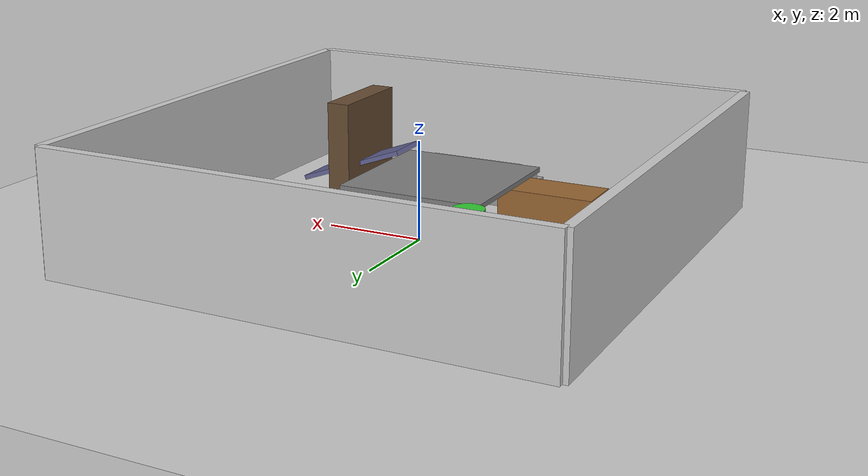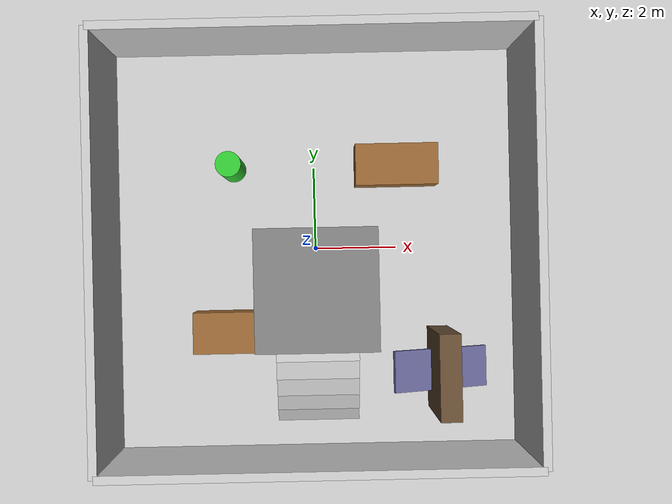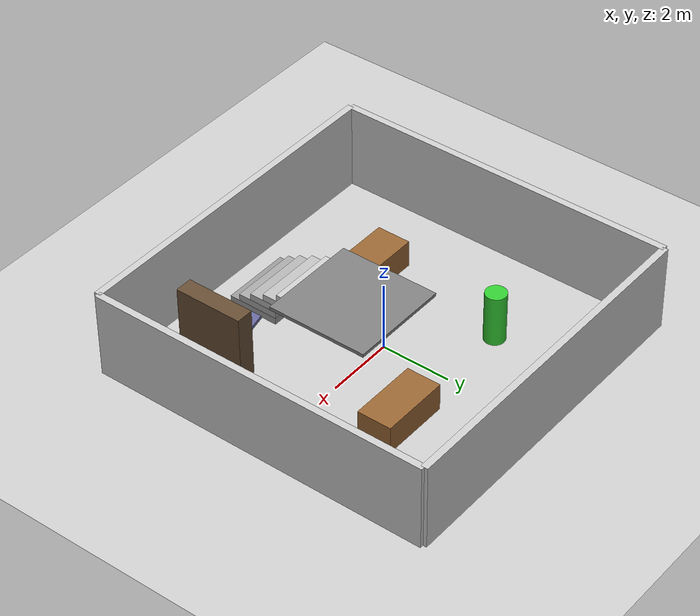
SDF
<?xml version="1.0" ?>
<sdf version="1.6">
  <world name="office_world">

    <!-- Physics -->
    <physics type="ode">
      <real_time_update_rate>1000.0</real_time_update_rate>
      <max_step_size>0.001</max_step_size>
      <real_time_factor>1</real_time_factor>
    </physics>

    <!-- Lighting -->
    <include>
      <uri>model://sun</uri>
    </include>

    <!-- Ground Plane -->
    <include>
      <uri>model://ground_plane</uri>
    </include>

    <!-- Walls to create office layout -->

    <!-- North Wall -->
    <model name="north_wall">
      <static>true</static>
      <link name="link">
        <collision name="collision">
          <geometry>
            <box>
              <size>10 0.2 2.5</size>
            </box>
          </geometry>
        </collision>
        <visual name="visual">
          <geometry>
            <box>
              <size>10 0.2 2.5</size>
            </box>
          </geometry>
          <material>
            <ambient>0.8 0.8 0.8 1</ambient>
          </material>
        </visual>
      </link>
      <pose>0 5 1.25 0 0 0</pose>
    </model>

    <!-- South Wall -->
    <model name="south_wall">
      <static>true</static>
      <link name="link">
        <collision name="collision">
          <geometry>
            <box>
              <size>10 0.2 2.5</size>
            </box>
          </geometry>
        </collision>
        <visual name="visual">
          <geometry>
            <box>
              <size>10 0.2 2.5</size>
            </box>
          </geometry>
          <material>
            <ambient>0.8 0.8 0.8 1</ambient>
          </material>
        </visual>
      </link>
      <pose>0 -5 1.25 0 0 0</pose>
    </model>

    <!-- East Wall -->
    <model name="east_wall">
      <static>true</static>
      <link name="link">
        <collision name="collision">
          <geometry>
            <box>
              <size>0.2 10 2.5</size>
            </box>
          </geometry>
        </collision>
        <visual name="visual">
          <geometry>
            <box>
              <size>0.2 10 2.5</size>
            </box>
          </geometry>
          <material>
            <ambient>0.8 0.8 0.8 1</ambient>
          </material>
        </visual>
      </link>
      <pose>5 0 1.25 0 0 0</pose>
    </model>

    <!-- West Wall -->
    <model name="west_wall">
      <static>true</static>
      <link name="link">
        <collision name="collision">
          <geometry>
            <box>
              <size>0.2 10 2.5</size>
            </box>
          </geometry>
        </collision>
        <visual name="visual">
          <geometry>
            <box>
              <size>0.2 10 2.5</size>
            </box>
          </geometry>
          <material>
            <ambient>0.8 0.8 0.8 1</ambient>
          </material>
        </visual>
      </link>
      <pose>-5 0 1.25 0 0 0</pose>
    </model>

    <!-- Internal obstacles/furniture -->

    <!-- Table 1 -->
    <model name="table_1">
      <static>true</static>
      <link name="link">
        <collision name="collision">
          <geometry>
            <box>
              <size>2 1 0.8</size>
            </box>
          </geometry>
        </collision>
        <visual name="visual">
          <geometry>
            <box>
              <size>2 1 0.8</size>
            </box>
          </geometry>
          <material>
            <ambient>0.6 0.4 0.2 1</ambient>
          </material>
        </visual>
      </link>
      <pose>2 2 0.4 0 0 0</pose>
    </model>

    <!-- Table 2 -->
    <model name="table_2">
      <static>true</static>
      <link name="link">
        <collision name="collision">
          <geometry>
            <box>
              <size>2 1 0.8</size>
            </box>
          </geometry>
        </collision>
        <visual name="visual">
          <geometry>
            <box>
              <size>2 1 0.8</size>
            </box>
          </geometry>
          <material>
            <ambient>0.6 0.4 0.2 1</ambient>
          </material>
        </visual>
      </link>
      <pose>-2 -2 0.4 0 0 0</pose>
    </model>

    <!-- Bookshelf -->
    <model name="bookshelf">
      <static>true</static>
      <link name="link">
        <collision name="collision">
          <geometry>
            <box>
              <size>0.5 2 2</size>
            </box>
          </geometry>
        </collision>
        <visual name="visual">
          <geometry>
            <box>
              <size>0.5 2 2</size>
            </box>
          </geometry>
          <material>
            <ambient>0.4 0.3 0.2 1</ambient>
          </material>
        </visual>
      </link>
      <pose>3 -3 1 0 0 0</pose>
    </model>

    <!-- Cylinder obstacle -->
    <model name="cylinder_obstacle">
      <static>true</static>
      <link name="link">
        <collision name="collision">
          <geometry>
            <cylinder>
              <radius>0.3</radius>
              <length>1.5</length>
            </cylinder>
          </geometry>
        </collision>
        <visual name="visual">
          <geometry>
            <cylinder>
              <radius>0.3</radius>
              <length>1.5</length>
            </cylinder>
          </geometry>
          <material>
            <ambient>0.2 0.8 0.2 1</ambient>
          </material>
        </visual>
      </link>
      <pose>-2 2 0.75 0 0 0</pose>
    </model>

    <!-- Staircase -->
    <!-- Step 1 (bottom) -->
    <model name="stair_step_1">
      <static>true</static>
      <link name="link">
        <collision name="collision">
          <geometry>
            <box>
              <size>2.0 1.5 0.2</size>
            </box>
          </geometry>
        </collision>
        <visual name="visual">
          <geometry>
            <box>
              <size>2.0 1.5 0.2</size>
            </box>
          </geometry>
          <material>
            <ambient>0.6 0.6 0.6 1</ambient>
          </material>
        </visual>
      </link>
      <pose>0 -3.5 0.1 0 0 0</pose>
    </model>

    <!-- Step 2 -->
    <model name="stair_step_2">
      <static>true</static>
      <link name="link">
        <collision name="collision">
          <geometry>
            <box>
              <size>2.0 1.2 0.2</size>
            </box>
          </geometry>
        </collision>
        <visual name="visual">
          <geometry>
            <box>
              <size>2.0 1.2 0.2</size>
            </box>
          </geometry>
          <material>
            <ambient>0.65 0.65 0.65 1</ambient>
          </material>
        </visual>
      </link>
      <pose>0 -3.35 0.3 0 0 0</pose>
    </model>

    <!-- Step 3 -->
    <model name="stair_step_3">
      <static>true</static>
      <link name="link">
        <collision name="collision">
          <geometry>
            <box>
              <size>2.0 0.9 0.2</size>
            </box>
          </geometry>
        </collision>
        <visual name="visual">
          <geometry>
            <box>
              <size>2.0 0.9 0.2</size>
            </box>
          </geometry>
          <material>
            <ambient>0.7 0.7 0.7 1</ambient>
          </material>
        </visual>
      </link>
      <pose>0 -3.125 0.5 0 0 0</pose>
    </model>

    <!-- Step 4 -->
    <model name="stair_step_4">
      <static>true</static>
      <link name="link">
        <collision name="collision">
          <geometry>
            <box>
              <size>2.0 0.6 0.2</size>
            </box>
          </geometry>
        </collision>
        <visual name="visual">
          <geometry>
            <box>
              <size>2.0 0.6 0.2</size>
            </box>
          </geometry>
          <material>
            <ambient>0.75 0.75 0.75 1</ambient>
          </material>
        </visual>
      </link>
      <pose>0 -2.85 0.7 0 0 0</pose>
    </model>

    <!-- Step 5 (top) -->
    <model name="stair_step_5">
      <static>true</static>
      <link name="link">
        <collision name="collision">
          <geometry>
            <box>
              <size>2.0 0.3 0.2</size>
            </box>
          </geometry>
        </collision>
        <visual name="visual">
          <geometry>
            <box>
              <size>2.0 0.3 0.2</size>
            </box>
          </geometry>
          <material>
            <ambient>0.8 0.8 0.8 1</ambient>
          </material>
        </visual>
      </link>
      <pose>0 -2.55 0.9 0 0 0</pose>
    </model>

    <!-- Upper platform -->
    <model name="upper_platform">
      <static>true</static>
      <link name="link">
        <collision name="collision">
          <geometry>
            <box>
              <size>3.0 3.0 0.1</size>
            </box>
          </geometry>
        </collision>
        <visual name="visual">
          <geometry>
            <box>
              <size>3.0 3.0 0.1</size>
            </box>
          </geometry>
          <material>
            <ambient>0.5 0.5 0.5 1</ambient>
          </material>
        </visual>
      </link>
      <pose>0 -1.0 1.0 0 0 0</pose>
    </model>

    <!-- Ramp (alternative path) -->
    <model name="ramp">
      <static>true</static>
      <link name="link">
        <collision name="collision">
          <geometry>
            <box>
              <size>2.5 1.0 0.1</size>
            </box>
          </geometry>
        </collision>
        <visual name="visual">
          <geometry>
            <box>
              <size>2.5 1.0 0.1</size>
            </box>
          </geometry>
          <material>
            <ambient>0.4 0.4 0.6 1</ambient>
          </material>
        </visual>
      </link>
      <pose>3.0 -3.0 0.5 0 0.35 0</pose>
    </model>

  </world>
</sdf>
